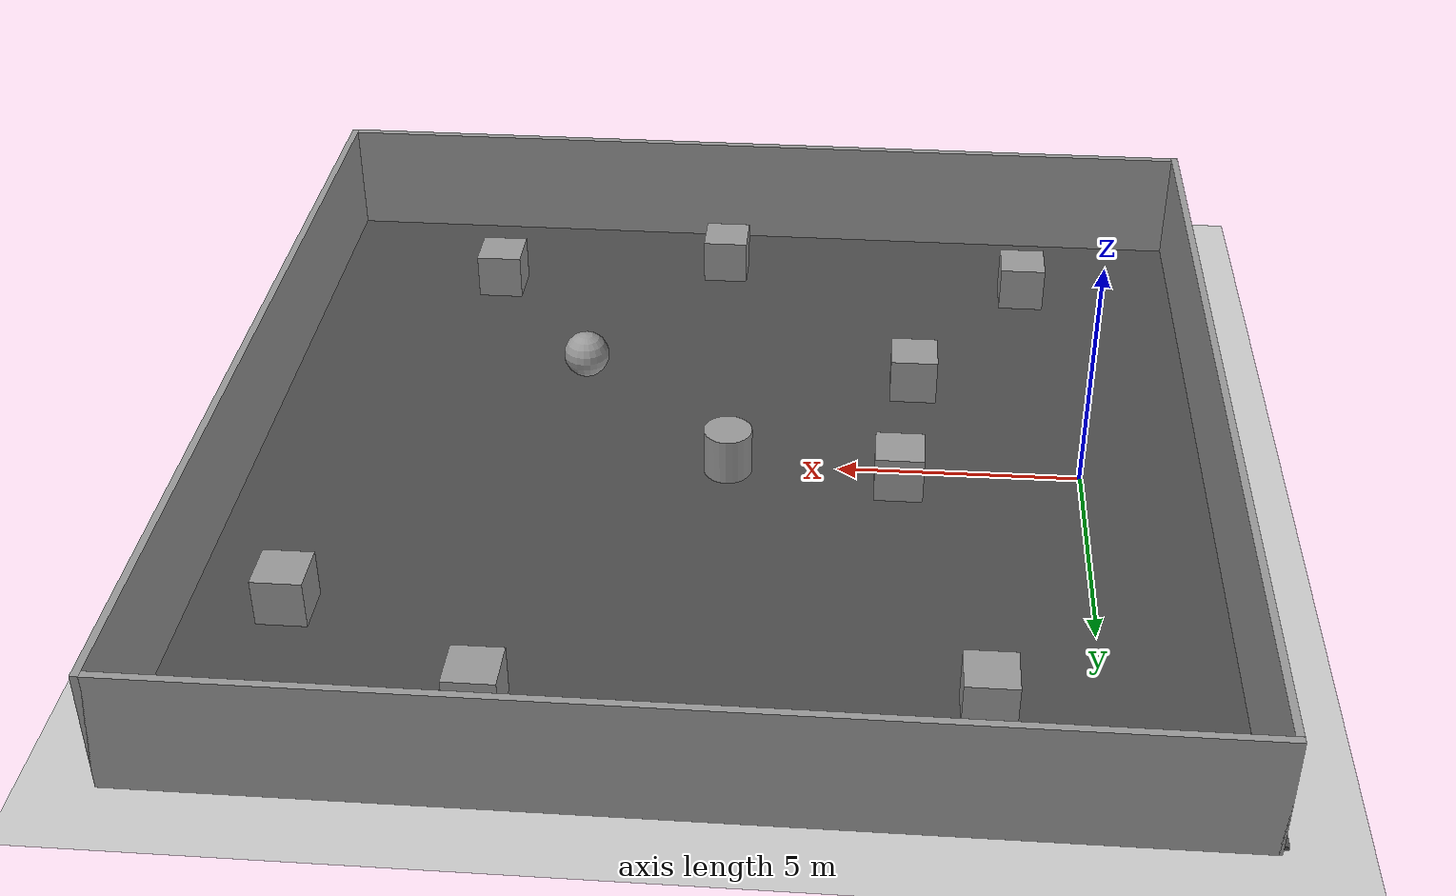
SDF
<sdf version="1.7">
 <world name="default">
  <light name="sun" type="directional">
   <pose>0 0 10 0 -0 0</pose>
   <diffuse>0.8 0.8 0.8 1</diffuse>
   <specular>0.2 0.2 0.2 1</specular>
   <attenuation>
    <range>1000</range>
    <constant>0.9</constant>
    <linear>0.01</linear>
    <quadratic>0.001</quadratic>
   </attenuation>
   <direction>-0.5 0.1 -0.9</direction>
   <spot><inner_angle>0</inner_angle><outer_angle>0</outer_angle><falloff>0</falloff></spot>
  </light>
  <model name="ground_plane">
   <static>1</static>
   <link name="link">
    <collision name="collision">
     <geometry><plane><normal>0 0 1</normal><size>100 100</size></plane></geometry>
     <surface><friction><ode><mu>100</mu><mu2>50</mu2></ode></friction></surface>
    </collision>
    <visual name="visual">
     <cast_shadows>0</cast_shadows>
     <geometry><plane><normal>0 0 1</normal><size>100 100</size></plane></geometry>
     <material>
      <script><uri>file://media/materials/scripts/gazebo.material</uri><name>Gazebo/Grey</name></script>
     </material>
    </visual>
   </link>
  </model>
  <gravity>0 0 -9.8</gravity>
  <magnetic_field>6e-06 2.3e-05 -4.2e-05</magnetic_field>
  <atmosphere type="adiabatic"/>
  <physics type="ode">
   <max_step_size>0.001</max_step_size>
   <real_time_factor>1</real_time_factor>
   <real_time_update_rate>1000</real_time_update_rate>
  </physics>
  <scene><ambient>0.4 0.4 0.4 1</ambient><background>0.7 0.7 0.7 1</background><shadows>1</shadows></scene>
  <spherical_coordinates>
   <surface_model>EARTH_WGS84</surface_model>
   <latitude_deg>0</latitude_deg>
   <longitude_deg>0</longitude_deg>
   <elevation>0</elevation>
   <heading_deg>0</heading_deg>
  </spherical_coordinates>
  <model name="wall_1">
   <link name="Wall_10">
    <pose>9.925 0 0 0 0 -1.5708</pose>
    <visual name="Wall_10_Visual">
     <pose>0 0 1.25 0 -0 0</pose>
     <geometry><box><size>20.25 0.15 2.5</size></box></geometry>
     <material>
      <script><uri>file://media/materials/scripts/gazebo.material</uri><name>Gazebo/Grey</name></script>
      <ambient>1 1 1 1</ambient>
      <shader type="pixel"/>
     </material>
     <meta><layer>0</layer></meta>
    </visual>
    <collision name="Wall_10_Collision">
     <pose>0 0 1.25 0 -0 0</pose>
     <geometry><box><size>20.25 0.15 2.5</size></box></geometry>
     <surface>
      <friction>
       <ode><mu>1</mu><mu2>1</mu2><fdir1>0 0 0</fdir1><slip1>0</slip1><slip2>0</slip2></ode>
       <torsional>
        <coefficient>1</coefficient>
        <patch_radius>0</patch_radius>
        <surface_radius>0</surface_radius>
        <use_patch_radius>1</use_patch_radius>
        <ode><slip>0</slip></ode>
       </torsional>
      </friction>
      <bounce><restitution_coefficient>0</restitution_coefficient><threshold>1e+06</threshold></bounce>
      <contact>
       <collide_without_contact>0</collide_without_contact>
       <collide_without_contact_bitmask>1</collide_without_contact_bitmask>
       <collide_bitmask>1</collide_bitmask>
       <ode>
        <soft_cfm>0</soft_cfm>
        <soft_erp>0.2</soft_erp>
        <kp>1e+13</kp>
        <kd>1</kd>
        <max_vel>0.01</max_vel>
        <min_depth>0</min_depth>
       </ode>
       <bullet>
        <split_impulse>1</split_impulse>
        <split_impulse_penetration_threshold>-0.01</split_impulse_penetration_threshold>
        <soft_cfm>0</soft_cfm>
        <soft_erp>0.2</soft_erp>
        <kp>1e+13</kp>
        <kd>1</kd>
       </bullet>
      </contact>
     </surface>
    </collision>
   </link>
   <link name="Wall_11">
    <pose>0 -10.05 0 0 -0 3.14159</pose>
    <visual name="Wall_11_Visual">
     <pose>0 0 1.25 0 -0 0</pose>
     <geometry><box><size>20 0.15 2.5</size></box></geometry>
     <material>
      <script><uri>file://media/materials/scripts/gazebo.material</uri><name>Gazebo/Grey</name></script>
      <ambient>1 1 1 1</ambient>
      <shader type="pixel"/>
     </material>
     <meta><layer>0</layer></meta>
    </visual>
    <collision name="Wall_11_Collision">
     <pose>0 0 1.25 0 -0 0</pose>
     <geometry><box><size>20 0.15 2.5</size></box></geometry>
     <surface>
      <friction>
       <ode><mu>1</mu><mu2>1</mu2><fdir1>0 0 0</fdir1><slip1>0</slip1><slip2>0</slip2></ode>
       <torsional>
        <coefficient>1</coefficient>
        <patch_radius>0</patch_radius>
        <surface_radius>0</surface_radius>
        <use_patch_radius>1</use_patch_radius>
        <ode><slip>0</slip></ode>
       </torsional>
      </friction>
      <bounce><restitution_coefficient>0</restitution_coefficient><threshold>1e+06</threshold></bounce>
      <contact>
       <collide_without_contact>0</collide_without_contact>
       <collide_without_contact_bitmask>1</collide_without_contact_bitmask>
       <collide_bitmask>1</collide_bitmask>
       <ode>
        <soft_cfm>0</soft_cfm>
        <soft_erp>0.2</soft_erp>
        <kp>1e+13</kp>
        <kd>1</kd>
        <max_vel>0.01</max_vel>
        <min_depth>0</min_depth>
       </ode>
       <bullet>
        <split_impulse>1</split_impulse>
        <split_impulse_penetration_threshold>-0.01</split_impulse_penetration_threshold>
        <soft_cfm>0</soft_cfm>
        <soft_erp>0.2</soft_erp>
        <kp>1e+13</kp>
        <kd>1</kd>
       </bullet>
      </contact>
     </surface>
    </collision>
   </link>
   <link name="Wall_12">
    <pose>-9.925 0 0 0 -0 1.5708</pose>
    <visual name="Wall_12_Visual">
     <pose>0 0 1.25 0 -0 0</pose>
     <geometry><box><size>20.25 0.15 2.5</size></box></geometry>
     <material>
      <script><uri>file://media/materials/scripts/gazebo.material</uri><name>Gazebo/Grey</name></script>
      <ambient>1 1 1 1</ambient>
      <shader type="pixel"/>
     </material>
     <meta><layer>0</layer></meta>
    </visual>
    <collision name="Wall_12_Collision">
     <pose>0 0 1.25 0 -0 0</pose>
     <geometry><box><size>20.25 0.15 2.5</size></box></geometry>
     <surface>
      <friction>
       <ode><mu>1</mu><mu2>1</mu2><fdir1>0 0 0</fdir1><slip1>0</slip1><slip2>0</slip2></ode>
       <torsional>
        <coefficient>1</coefficient>
        <patch_radius>0</patch_radius>
        <surface_radius>0</surface_radius>
        <use_patch_radius>1</use_patch_radius>
        <ode><slip>0</slip></ode>
       </torsional>
      </friction>
      <bounce><restitution_coefficient>0</restitution_coefficient><threshold>1e+06</threshold></bounce>
      <contact>
       <collide_without_contact>0</collide_without_contact>
       <collide_without_contact_bitmask>1</collide_without_contact_bitmask>
       <collide_bitmask>1</collide_bitmask>
       <ode>
        <soft_cfm>0</soft_cfm>
        <soft_erp>0.2</soft_erp>
        <kp>1e+13</kp>
        <kd>1</kd>
        <max_vel>0.01</max_vel>
        <min_depth>0</min_depth>
       </ode>
       <bullet>
        <split_impulse>1</split_impulse>
        <split_impulse_penetration_threshold>-0.01</split_impulse_penetration_threshold>
        <soft_cfm>0</soft_cfm>
        <soft_erp>0.2</soft_erp>
        <kp>1e+13</kp>
        <kd>1</kd>
       </bullet>
      </contact>
     </surface>
    </collision>
   </link>
   <link name="Wall_9">
    <pose>0 10.05 0 0 -0 0</pose>
    <visual name="Wall_9_Visual">
     <pose>0 0 1.25 0 -0 0</pose>
     <geometry><box><size>20 0.15 2.5</size></box></geometry>
     <material>
      <script><uri>file://media/materials/scripts/gazebo.material</uri><name>Gazebo/Grey</name></script>
      <ambient>1 1 1 1</ambient>
      <shader type="pixel"/>
     </material>
     <meta><layer>0</layer></meta>
    </visual>
    <collision name="Wall_9_Collision">
     <pose>0 0 1.25 0 -0 0</pose>
     <geometry><box><size>20 0.15 2.5</size></box></geometry>
     <surface>
      <friction>
       <ode><mu>1</mu><mu2>1</mu2><fdir1>0 0 0</fdir1><slip1>0</slip1><slip2>0</slip2></ode>
       <torsional>
        <coefficient>1</coefficient>
        <patch_radius>0</patch_radius>
        <surface_radius>0</surface_radius>
        <use_patch_radius>1</use_patch_radius>
        <ode><slip>0</slip></ode>
       </torsional>
      </friction>
      <bounce><restitution_coefficient>0</restitution_coefficient><threshold>1e+06</threshold></bounce>
      <contact>
       <collide_without_contact>0</collide_without_contact>
       <collide_without_contact_bitmask>1</collide_without_contact_bitmask>
       <collide_bitmask>1</collide_bitmask>
       <ode>
        <soft_cfm>0</soft_cfm>
        <soft_erp>0.2</soft_erp>
        <kp>1e+13</kp>
        <kd>1</kd>
        <max_vel>0.01</max_vel>
        <min_depth>0</min_depth>
       </ode>
       <bullet>
        <split_impulse>1</split_impulse>
        <split_impulse_penetration_threshold>-0.01</split_impulse_penetration_threshold>
        <soft_cfm>0</soft_cfm>
        <soft_erp>0.2</soft_erp>
        <kp>1e+13</kp>
        <kd>1</kd>
       </bullet>
      </contact>
     </surface>
    </collision>
   </link>
   <static>1</static>
   <pose>7.323 0.229513 0 0 -0 0</pose>
  </model>
  <model name="asphalt_plane">
   <static>1</static>
   <link name="link">
    <collision name="collision"><geometry><box><size>20 20 0.1</size></box></geometry></collision>
    <visual name="visual">
     <cast_shadows>0</cast_shadows>
     <geometry><box><size>20 20 0.1</size></box></geometry>
     <material>
      <script>
       <uri>model://asphalt_plane/materials/scripts</uri>
       <uri>model://asphalt_plane/materials/textures</uri>
       <name>vrc/asphalt</name>
      </script>
     </material>
    </visual>
   </link>
   <pose>7.19075 0.205948 0 0 -0 0</pose>
  </model>
  <model name="unit_box">
   <pose>3.47559 -3.07533 0.55 0 -0 2e-06</pose>
   <link name="link">
    <inertial>
     <mass>1</mass>
     <inertia>
      <ixx>0.166667</ixx>
      <ixy>0</ixy>
      <ixz>0</ixz>
      <iyy>0.166667</iyy>
      <iyz>0</iyz>
      <izz>0.166667</izz>
     </inertia>
    </inertial>
    <collision name="collision"><geometry><box><size>1 1 1</size></box></geometry></collision>
    <visual name="visual">
     <geometry><box><size>1 1 1</size></box></geometry>
     <material>
      <script><name>Gazebo/Grey</name><uri>file://media/materials/scripts/gazebo.material</uri></script>
     </material>
    </visual>
   </link>
  </model>
  <model name="unit_sphere">
   <pose>10.6993 -3.18827 0.55 0 -0 0</pose>
   <link name="link">
    <inertial>
     <mass>1</mass>
     <inertia><ixx>0.1</ixx><ixy>0</ixy><ixz>0</ixz><iyy>0.1</iyy><iyz>0</iyz><izz>0.1</izz></inertia>
    </inertial>
    <collision name="collision"><geometry><sphere><radius>0.5</radius></sphere></geometry></collision>
    <visual name="visual">
     <geometry><sphere><radius>0.5</radius></sphere></geometry>
     <material>
      <script><name>Gazebo/Grey</name><uri>file://media/materials/scripts/gazebo.material</uri></script>
     </material>
    </visual>
   </link>
  </model>
  <model name="unit_cylinder_clone">
   <pose>7.28589 0.260053 0.550002 -3e-06 -1e-06 9.4e-05</pose>
   <link name="link">
    <inertial>
     <mass>1</mass>
     <inertia><ixx>0.145833</ixx><ixy>0</ixy><ixz>0</ixz><iyy>0.145833</iyy><iyz>0</iyz><izz>0.125</izz></inertia>
    </inertial>
    <collision name="collision">
     <geometry><cylinder><radius>0.5</radius><length>1</length></cylinder></geometry>
    </collision>
    <visual name="visual">
     <geometry><cylinder><radius>0.5</radius><length>1</length></cylinder></geometry>
     <material>
      <script><name>Gazebo/Grey</name><uri>file://media/materials/scripts/gazebo.material</uri></script>
     </material>
    </visual>
   </link>
  </model>
  <model name="unit_box_clone">
   <pose>2.07405 7.30052 0.550002 -4e-06 -0 9e-06</pose>
   <link name="link">
    <inertial>
     <mass>1</mass>
     <inertia>
      <ixx>0.166667</ixx>
      <ixy>0</ixy>
      <ixz>0</ixz>
      <iyy>0.166667</iyy>
      <iyz>0</iyz>
      <izz>0.166667</izz>
     </inertia>
    </inertial>
    <collision name="collision"><geometry><box><size>1 1 1</size></box></geometry></collision>
    <visual name="visual">
     <geometry><box><size>1 1 1</size></box></geometry>
     <material>
      <script><name>Gazebo/Grey</name><uri>file://media/materials/scripts/gazebo.material</uri></script>
     </material>
    </visual>
   </link>
  </model>
  <model name="unit_box_clone_0">
   <pose>3.75115 0.601878 0.550002 -4e-06 -0 6e-06</pose>
   <link name="link">
    <inertial>
     <mass>1</mass>
     <inertia>
      <ixx>0.166667</ixx>
      <ixy>0</ixy>
      <ixz>0</ixz>
      <iyy>0.166667</iyy>
      <iyz>0</iyz>
      <izz>0.166667</izz>
     </inertia>
    </inertial>
    <collision name="collision"><geometry><box><size>1 1 1</size></box></geometry></collision>
    <visual name="visual">
     <geometry><box><size>1 1 1</size></box></geometry>
     <material>
      <script><name>Gazebo/Grey</name><uri>file://media/materials/scripts/gazebo.material</uri></script>
     </material>
    </visual>
   </link>
  </model>
  <model name="unit_box_clone_clone">
   <pose>0.985724 -7.22821 0.549995 1e-05 -0 1.2e-05</pose>
   <link name="link">
    <inertial>
     <mass>1</mass>
     <inertia>
      <ixx>0.166667</ixx>
      <ixy>0</ixy>
      <ixz>0</ixz>
      <iyy>0.166667</iyy>
      <iyz>0</iyz>
      <izz>0.166667</izz>
     </inertia>
    </inertial>
    <collision name="collision"><geometry><box><size>1 1 1</size></box></geometry></collision>
    <visual name="visual">
     <geometry><box><size>1 1 1</size></box></geometry>
     <material>
      <script><name>Gazebo/Grey</name><uri>file://media/materials/scripts/gazebo.material</uri></script>
     </material>
    </visual>
   </link>
  </model>
  <model name="unit_box_clone_clone_0">
   <pose>13.1989 -6.86061 0.550002 -4e-06 -0 1.1e-05</pose>
   <link name="link">
    <inertial>
     <mass>1</mass>
     <inertia>
      <ixx>0.166667</ixx>
      <ixy>0</ixy>
      <ixz>0</ixz>
      <iyy>0.166667</iyy>
      <iyz>0</iyz>
      <izz>0.166667</izz>
     </inertia>
    </inertial>
    <collision name="collision"><geometry><box><size>1 1 1</size></box></geometry></collision>
    <visual name="visual">
     <geometry><box><size>1 1 1</size></box></geometry>
     <material>
      <script><name>Gazebo/Grey</name><uri>file://media/materials/scripts/gazebo.material</uri></script>
     </material>
    </visual>
   </link>
  </model>
  <model name="unit_box_clone_clone_1">
   <pose>7.96737 -7.97085 0.549999 -2e-06 -0 1e-05</pose>
   <link name="link">
    <inertial>
     <mass>1</mass>
     <inertia>
      <ixx>0.166667</ixx>
      <ixy>0</ixy>
      <ixz>0</ixz>
      <iyy>0.166667</iyy>
      <iyz>0</iyz>
      <izz>0.166667</izz>
     </inertia>
    </inertial>
    <collision name="collision"><geometry><box><size>1 1 1</size></box></geometry></collision>
    <visual name="visual">
     <geometry><box><size>1 1 1</size></box></geometry>
     <material>
      <script><name>Gazebo/Grey</name><uri>file://media/materials/scripts/gazebo.material</uri></script>
     </material>
    </visual>
   </link>
  </model>
  <model name="unit_box_clone_clone_2">
   <pose>15.2421 5.44684 0.549995 1e-05 -0 1e-05</pose>
   <link name="link">
    <inertial>
     <mass>1</mass>
     <inertia>
      <ixx>0.166667</ixx>
      <ixy>0</ixy>
      <ixz>0</ixz>
      <iyy>0.166667</iyy>
      <iyz>0</iyz>
      <izz>0.166667</izz>
     </inertia>
    </inertial>
    <collision name="collision"><geometry><box><size>1 1 1</size></box></geometry></collision>
    <visual name="visual">
     <geometry><box><size>1 1 1</size></box></geometry>
     <material>
      <script><name>Gazebo/Grey</name><uri>file://media/materials/scripts/gazebo.material</uri></script>
     </material>
    </visual>
   </link>
  </model>
  <model name="unit_box_clone_clone_3">
   <pose>11.1797 7.89269 0.549995 1e-05 0 9e-06</pose>
   <link name="link">
    <inertial>
     <mass>1</mass>
     <inertia>
      <ixx>0.166667</ixx>
      <ixy>0</ixy>
      <ixz>0</ixz>
      <iyy>0.166667</iyy>
      <iyz>0</iyz>
      <izz>0.166667</izz>
     </inertia>
    </inertial>
    <collision name="collision"><geometry><box><size>1 1 1</size></box></geometry></collision>
    <visual name="visual">
     <geometry><box><size>1 1 1</size></box></geometry>
     <material>
      <script><name>Gazebo/Grey</name><uri>file://media/materials/scripts/gazebo.material</uri></script>
     </material>
    </visual>
   </link>
  </model>
 </world>
</sdf>
